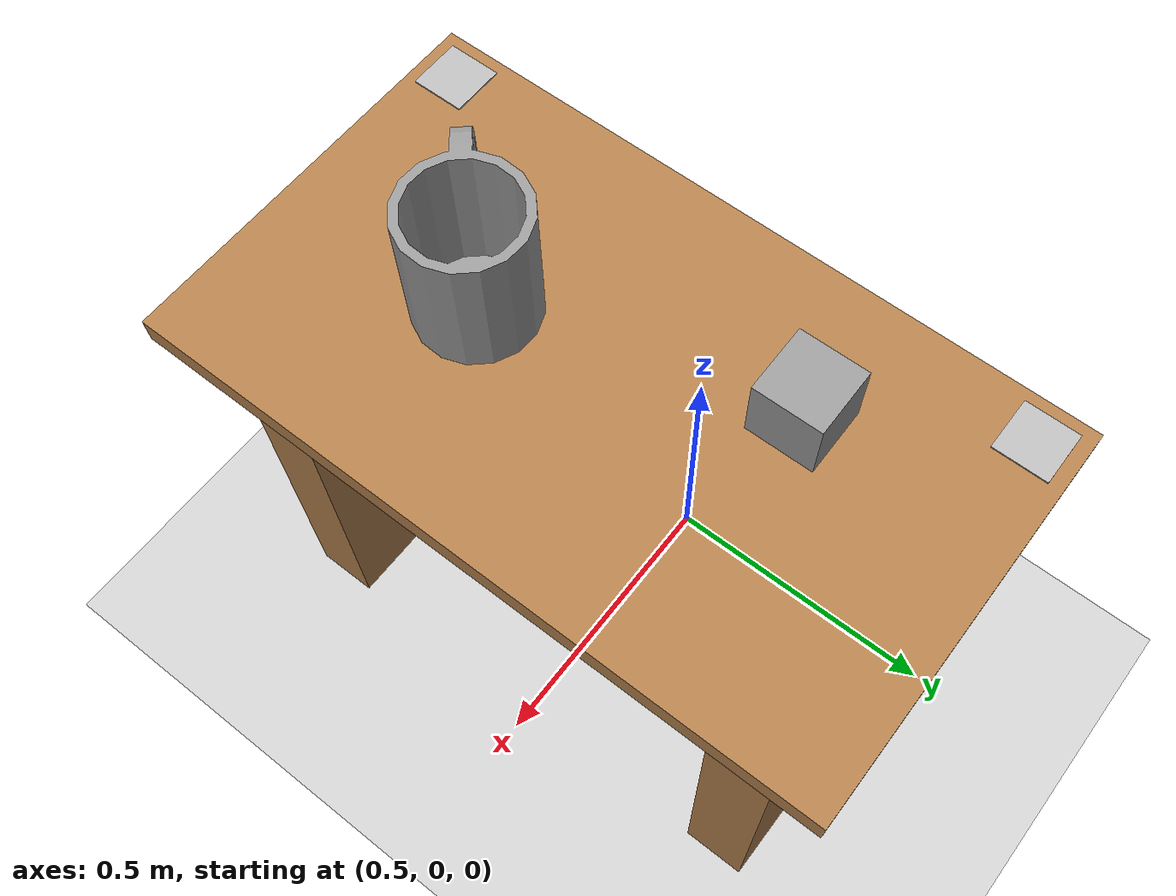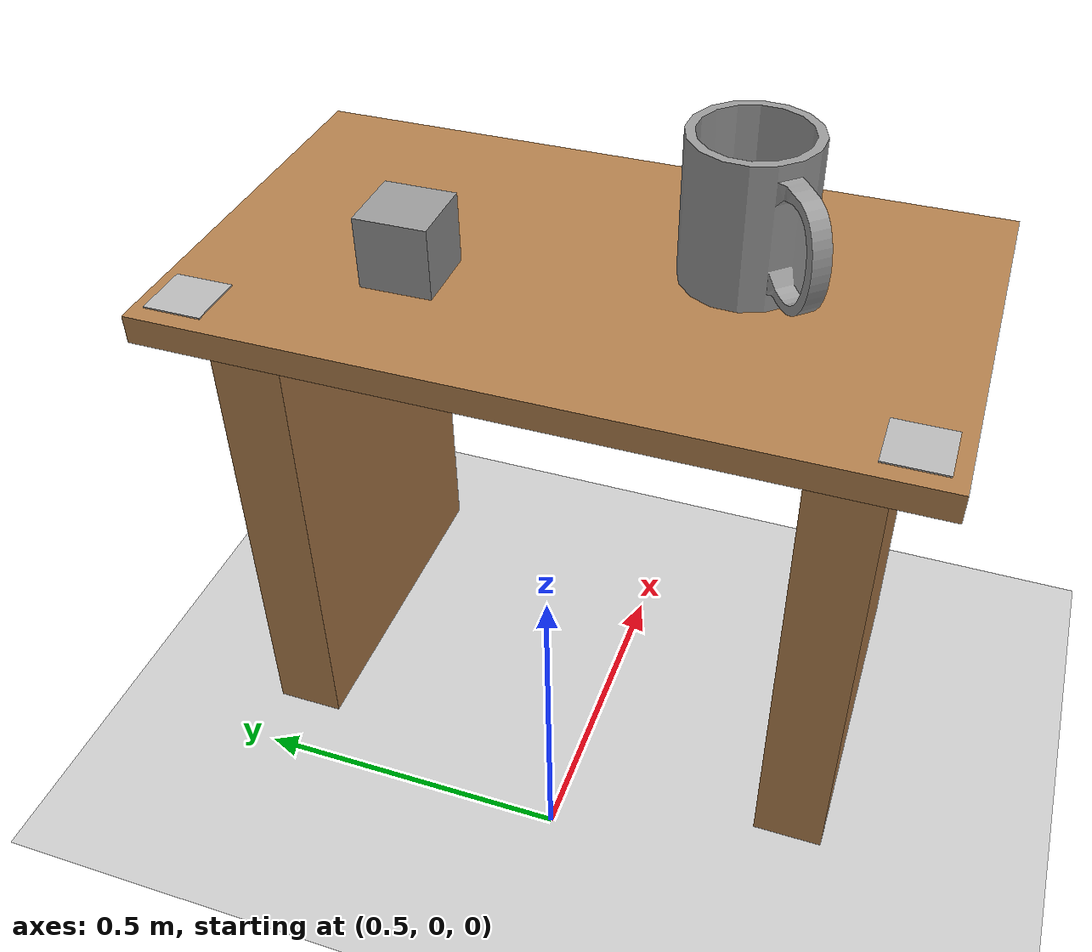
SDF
<sdf version="1.6">
 <world name="default">
  <light name="sun" type="directional">
   <pose>0 0 10 0 -0 0</pose>
   <diffuse>0.8 0.8 0.8 1</diffuse>
   <specular>0.2 0.2 0.2 1</specular>
   <attenuation>
    <range>1000</range>
    <constant>0.9</constant>
    <linear>0.01</linear>
    <quadratic>0.001</quadratic>
   </attenuation>
   <direction>-0.5 0.1 -0.9</direction>
  </light>
  <physics name="dart_2ms" default="0" type="dart">
   <max_step_size>0.002</max_step_size>
   <real_time_factor>1</real_time_factor>
   <real_time_update_rate>500</real_time_update_rate>
   <dart><solver><solver_type>pgs</solver_type></solver></dart>
  </physics>
  <model name="ground_plane">
   <static>1</static>
   <link name="link">
    <collision name="collision">
     <geometry><plane><normal>0 0 1</normal><size>100 100</size></plane></geometry>
     <surface>
      <contact><collide_bitmask>65535</collide_bitmask></contact>
      <friction><ode><mu>100</mu><mu2>50</mu2></ode></friction>
     </surface>
    </collision>
    <visual name="visual">
     <cast_shadows>0</cast_shadows>
     <geometry><plane><normal>0 0 1</normal><size>100 100</size></plane></geometry>
     <material>
      <script><uri>file://media/materials/scripts/gazebo.material</uri><name>Gazebo/Grey</name></script>
     </material>
    </visual>
   </link>
  </model>
  <gravity>0 0 -9.8</gravity>
  <magnetic_field>6e-06 2.3e-05 -4.2e-05</magnetic_field>
  <atmosphere type="adiabatic"/>
  <scene><ambient>0.4 0.4 0.4 1</ambient><background>0.7 0.7 0.7 1</background><shadows>1</shadows></scene>
  <audio><device>default</device></audio>
  <spherical_coordinates>
   <surface_model>EARTH_WGS84</surface_model>
   <latitude_deg>0</latitude_deg>
   <longitude_deg>0</longitude_deg>
   <elevation>0</elevation>
   <heading_deg>0</heading_deg>
  </spherical_coordinates>
  <model name="table_b_1">
   <static>1</static>
   <link name="link">
    <visual name="surface">
     <pose>0 0 0.73 0 -0 0</pose>
     <geometry><box><size>1.04 0.6 0.04</size></box></geometry>
     <material>
      <script><uri>file://media/materials/scripts/gazebo.material</uri><name>Gazebo/Wood</name></script>
     </material>
    </visual>
    <visual name="leg_left">
     <pose>0.39 0 0.355 0 -0 0</pose>
     <geometry><box><size>0.1 0.5 0.71</size></box></geometry>
     <material>
      <script><uri>file://media/materials/scripts/gazebo.material</uri><name>Gazebo/Wood</name></script>
     </material>
    </visual>
    <visual name="leg_right">
     <pose>-0.39 0 0.355 0 -0 0</pose>
     <geometry><box><size>0.1 0.5 0.71</size></box></geometry>
     <material>
      <script><uri>file://media/materials/scripts/gazebo.material</uri><name>Gazebo/Wood</name></script>
     </material>
    </visual>
    <collision name="surface">
     <pose>0 0 0.73 0 -0 0</pose>
     <geometry><box><size>1.04 0.6 0.04</size></box></geometry>
    </collision>
    <collision name="leg_left">
     <pose>0.39 0 0.355 0 -0 0</pose>
     <geometry><box><size>0.1 0.5 0.71</size></box></geometry>
    </collision>
    <collision name="leg_right">
     <pose>-0.39 0 0.355 0 -0 0</pose>
     <geometry><box><size>0.1 0.5 0.71</size></box></geometry>
    </collision>
    <visual name="marker_8">
     <pose>0.46 0.24 0.755 0 -0 0</pose>
     <geometry><mesh><uri>model://ar_marker_8cm_8/meshes/ar_marker_8cm.dae</uri></mesh></geometry>
    </visual>
    <visual name="marker_9">
     <pose>-0.46 0.24 0.755 0 -0 0</pose>
     <geometry><mesh><uri>model://ar_marker_8cm_9/meshes/ar_marker_8cm.dae</uri></mesh></geometry>
    </visual>
   </link>
   <pose>0.744485 0.018586 0.142925 0 -0 1.57098</pose>
  </model>
  <model name="Mug">
   <link name="link_0">
    <inertial>
     <mass>0.2</mass>
     <inertia>
      <ixx>0.0333333</ixx>
      <ixy>0</ixy>
      <ixz>0</ixz>
      <iyy>0.0333333</iyy>
      <iyz>0</iyz>
      <izz>0.0333333</izz>
     </inertia>
    </inertial>
    <visual name="visual">
     <geometry><mesh><uri>model://Mug/Mug.dae</uri><scale>1 1 1</scale></mesh></geometry>
     <material>
      <lighting>1</lighting>
      <script><uri>file://media/materials/scripts/gazebo.material</uri><name>Gazebo/Grey</name></script>
      <shader type="pixel"><normal_map>__default__</normal_map></shader>
      <ambient>0.3 0.3 0.3 1</ambient>
      <diffuse>0.7 0.7 0.7 1</diffuse>
      <specular>0.01 0.01 0.01 1</specular>
      <emissive>0 0 0 1</emissive>
     </material>
    </visual>
    <collision name="collision_2">
     <pose>-0.01 0.01 0.03 0 -0 0</pose>
     <geometry><sphere><radius>0.08</radius></sphere></geometry>
     <surface>
      <friction>
       <ode><mu>1</mu><mu2>1</mu2><fdir1>0 0 0</fdir1><slip1>0</slip1><slip2>0</slip2></ode>
       <torsional>
        <coefficient>1</coefficient>
        <patch_radius>0</patch_radius>
        <surface_radius>0</surface_radius>
        <use_patch_radius>1</use_patch_radius>
        <ode><slip>0</slip></ode>
       </torsional>
      </friction>
      <bounce><restitution_coefficient>0</restitution_coefficient><threshold>1e+06</threshold></bounce>
      <contact>
       <collide_without_contact>0</collide_without_contact>
       <collide_without_contact_bitmask>1</collide_without_contact_bitmask>
       <collide_bitmask>1</collide_bitmask>
       <ode>
        <soft_cfm>0</soft_cfm>
        <soft_erp>0.2</soft_erp>
        <kp>1e+13</kp>
        <kd>1</kd>
        <max_vel>0.01</max_vel>
        <min_depth>0</min_depth>
       </ode>
       <bullet>
        <split_impulse>1</split_impulse>
        <split_impulse_penetration_threshold>-0.01</split_impulse_penetration_threshold>
        <soft_cfm>0</soft_cfm>
        <soft_erp>0.2</soft_erp>
        <kp>1e+13</kp>
        <kd>1</kd>
       </bullet>
      </contact>
     </surface>
    </collision>
    <collision name="collision_4">
     <pose>0.01 0.01 -0.1 0 -0 0</pose>
     <geometry><box><size>0.12 0.12 0.01</size></box></geometry>
     <surface>
      <friction>
       <ode><mu>1</mu><mu2>1</mu2><fdir1>0 0 0</fdir1><slip1>0</slip1><slip2>0</slip2></ode>
       <torsional>
        <coefficient>1</coefficient>
        <patch_radius>0</patch_radius>
        <surface_radius>0</surface_radius>
        <use_patch_radius>1</use_patch_radius>
        <ode><slip>0</slip></ode>
       </torsional>
      </friction>
      <bounce><restitution_coefficient>0</restitution_coefficient><threshold>1e+06</threshold></bounce>
      <contact>
       <collide_without_contact>0</collide_without_contact>
       <collide_without_contact_bitmask>1</collide_without_contact_bitmask>
       <collide_bitmask>1</collide_bitmask>
       <ode>
        <soft_cfm>0</soft_cfm>
        <soft_erp>0.2</soft_erp>
        <kp>1e+13</kp>
        <kd>1</kd>
        <max_vel>0.01</max_vel>
        <min_depth>0</min_depth>
       </ode>
       <bullet>
        <split_impulse>1</split_impulse>
        <split_impulse_penetration_threshold>-0.01</split_impulse_penetration_threshold>
        <soft_cfm>0</soft_cfm>
        <soft_erp>0.2</soft_erp>
        <kp>1e+13</kp>
        <kd>1</kd>
       </bullet>
      </contact>
     </surface>
    </collision>
    <collision name="collision_6">
     <pose>0.12 0 0.08 0 -0 0</pose>
     <geometry><box><size>0.11 0.01 0.01</size></box></geometry>
     <surface>
      <friction>
       <ode><mu>1</mu><mu2>1</mu2><fdir1>0 0 0</fdir1><slip1>0</slip1><slip2>0</slip2></ode>
       <torsional>
        <coefficient>1</coefficient>
        <patch_radius>0</patch_radius>
        <surface_radius>0</surface_radius>
        <use_patch_radius>1</use_patch_radius>
        <ode><slip>0</slip></ode>
       </torsional>
      </friction>
      <bounce><restitution_coefficient>0</restitution_coefficient><threshold>1e+06</threshold></bounce>
      <contact>
       <collide_without_contact>0</collide_without_contact>
       <collide_without_contact_bitmask>1</collide_without_contact_bitmask>
       <collide_bitmask>1</collide_bitmask>
       <ode>
        <soft_cfm>0</soft_cfm>
        <soft_erp>0.2</soft_erp>
        <kp>1e+13</kp>
        <kd>1</kd>
        <max_vel>0.01</max_vel>
        <min_depth>0</min_depth>
       </ode>
       <bullet>
        <split_impulse>1</split_impulse>
        <split_impulse_penetration_threshold>-0.01</split_impulse_penetration_threshold>
        <soft_cfm>0</soft_cfm>
        <soft_erp>0.2</soft_erp>
        <kp>1e+13</kp>
        <kd>1</kd>
       </bullet>
      </contact>
     </surface>
    </collision>
    <collision name="collision_3">
     <pose>-0.01 0.01 -0.02 0 -0 0</pose>
     <geometry><sphere><radius>0.08</radius></sphere></geometry>
     <surface>
      <friction>
       <ode><mu>1</mu><mu2>1</mu2><fdir1>0 0 0</fdir1><slip1>0</slip1><slip2>0</slip2></ode>
       <torsional>
        <coefficient>1</coefficient>
        <patch_radius>0</patch_radius>
        <surface_radius>0</surface_radius>
        <use_patch_radius>1</use_patch_radius>
        <ode><slip>0</slip></ode>
       </torsional>
      </friction>
      <bounce><restitution_coefficient>0</restitution_coefficient><threshold>1e+06</threshold></bounce>
      <contact>
       <collide_without_contact>0</collide_without_contact>
       <collide_without_contact_bitmask>1</collide_without_contact_bitmask>
       <collide_bitmask>1</collide_bitmask>
       <ode>
        <soft_cfm>0</soft_cfm>
        <soft_erp>0.2</soft_erp>
        <kp>1e+13</kp>
        <kd>1</kd>
        <max_vel>0.01</max_vel>
        <min_depth>0</min_depth>
       </ode>
       <bullet>
        <split_impulse>1</split_impulse>
        <split_impulse_penetration_threshold>-0.01</split_impulse_penetration_threshold>
        <soft_cfm>0</soft_cfm>
        <soft_erp>0.2</soft_erp>
        <kp>1e+13</kp>
        <kd>1</kd>
       </bullet>
      </contact>
     </surface>
    </collision>
    <collision name="collision_1">
     <pose>-0.01 0.01 0 0 -0 0</pose>
     <geometry><sphere><radius>0.08</radius></sphere></geometry>
     <surface>
      <friction>
       <ode><mu>1</mu><mu2>1</mu2><fdir1>0 0 0</fdir1><slip1>0</slip1><slip2>0</slip2></ode>
       <torsional>
        <coefficient>1</coefficient>
        <patch_radius>0</patch_radius>
        <surface_radius>0</surface_radius>
        <use_patch_radius>1</use_patch_radius>
        <ode><slip>0</slip></ode>
       </torsional>
      </friction>
      <bounce><restitution_coefficient>0</restitution_coefficient><threshold>1e+06</threshold></bounce>
      <contact>
       <collide_without_contact>0</collide_without_contact>
       <collide_without_contact_bitmask>1</collide_without_contact_bitmask>
       <collide_bitmask>1</collide_bitmask>
       <ode>
        <soft_cfm>0</soft_cfm>
        <soft_erp>0.2</soft_erp>
        <kp>1e+13</kp>
        <kd>1</kd>
        <max_vel>0.01</max_vel>
        <min_depth>0</min_depth>
       </ode>
       <bullet>
        <split_impulse>1</split_impulse>
        <split_impulse_penetration_threshold>-0.01</split_impulse_penetration_threshold>
        <soft_cfm>0</soft_cfm>
        <soft_erp>0.2</soft_erp>
        <kp>1e+13</kp>
        <kd>1</kd>
       </bullet>
      </contact>
     </surface>
    </collision>
    <collision name="collision_5">
     <pose>0.17 0 0 0 -0 0</pose>
     <geometry><box><size>0.01 0.01 0.18</size></box></geometry>
     <surface>
      <friction>
       <ode><mu>1</mu><mu2>1</mu2><fdir1>0 0 0</fdir1><slip1>0</slip1><slip2>0</slip2></ode>
       <torsional>
        <coefficient>1</coefficient>
        <patch_radius>0</patch_radius>
        <surface_radius>0</surface_radius>
        <use_patch_radius>1</use_patch_radius>
        <ode><slip>0</slip></ode>
       </torsional>
      </friction>
      <bounce><restitution_coefficient>0</restitution_coefficient><threshold>1e+06</threshold></bounce>
      <contact>
       <collide_without_contact>0</collide_without_contact>
       <collide_without_contact_bitmask>1</collide_without_contact_bitmask>
       <collide_bitmask>1</collide_bitmask>
       <ode>
        <soft_cfm>0</soft_cfm>
        <soft_erp>0.2</soft_erp>
        <kp>1e+13</kp>
        <kd>1</kd>
        <max_vel>0.01</max_vel>
        <min_depth>0</min_depth>
       </ode>
       <bullet>
        <split_impulse>1</split_impulse>
        <split_impulse_penetration_threshold>-0.01</split_impulse_penetration_threshold>
        <soft_cfm>0</soft_cfm>
        <soft_erp>0.2</soft_erp>
        <kp>1e+13</kp>
        <kd>1</kd>
       </bullet>
      </contact>
     </surface>
    </collision>
    <collision name="collision_7">
     <pose>0.12 0 -0.08 0 -0 0</pose>
     <geometry><box><size>0.09 0.01 0.01</size></box></geometry>
     <surface>
      <friction>
       <ode><mu>1</mu><mu2>1</mu2><fdir1>0 0 0</fdir1><slip1>0</slip1><slip2>0</slip2></ode>
       <torsional>
        <coefficient>1</coefficient>
        <patch_radius>0</patch_radius>
        <surface_radius>0</surface_radius>
        <use_patch_radius>1</use_patch_radius>
        <ode><slip>0</slip></ode>
       </torsional>
      </friction>
      <bounce><restitution_coefficient>0</restitution_coefficient><threshold>1e+06</threshold></bounce>
      <contact>
       <collide_without_contact>0</collide_without_contact>
       <collide_without_contact_bitmask>1</collide_without_contact_bitmask>
       <collide_bitmask>1</collide_bitmask>
       <ode>
        <soft_cfm>0</soft_cfm>
        <soft_erp>0.2</soft_erp>
        <kp>1e+13</kp>
        <kd>1</kd>
        <max_vel>0.01</max_vel>
        <min_depth>0</min_depth>
       </ode>
       <bullet>
        <split_impulse>1</split_impulse>
        <split_impulse_penetration_threshold>-0.01</split_impulse_penetration_threshold>
        <soft_cfm>0</soft_cfm>
        <soft_erp>0.2</soft_erp>
        <kp>1e+13</kp>
        <kd>1</kd>
       </bullet>
      </contact>
     </surface>
    </collision>
   </link>
   <static>0</static>
   <pose>0.764797 -0.182399 0.997924 1e-06 -7e-06 -2.39901</pose>
  </model>
  <model name="BoxSquare">
   <link name="link_0">
    <inertial>
     <mass>0.25</mass>
     <inertia>
      <ixx>0.00041667</ixx>
      <ixy>0</ixy>
      <ixz>0</ixz>
      <iyy>0.00041667</iyy>
      <iyz>0</iyz>
      <izz>0.00041667</izz>
     </inertia>
    </inertial>
    <visual name="visual">
     <geometry><mesh><uri>model://BoxSquare/BoxSquare.dae</uri><scale>1 1 1</scale></mesh></geometry>
     <material>
      <lighting>1</lighting>
      <script><uri>file://media/materials/scripts/gazebo.material</uri><name>Gazebo/Grey</name></script>
      <shader type="pixel"><normal_map>__default__</normal_map></shader>
      <ambient>0.3 0.3 0.3 1</ambient>
      <diffuse>0.7 0.7 0.7 1</diffuse>
      <specular>0.01 0.01 0.01 1</specular>
      <emissive>0 0 0 1</emissive>
     </material>
    </visual>
    <collision name="collision_1">
     <geometry><box><size>0.1 0.1 0.1</size></box></geometry>
     <surface>
      <friction>
       <ode><mu>1</mu><mu2>1</mu2><fdir1>0 0 0</fdir1><slip1>0</slip1><slip2>0</slip2></ode>
       <torsional>
        <coefficient>1</coefficient>
        <patch_radius>0</patch_radius>
        <surface_radius>0</surface_radius>
        <use_patch_radius>1</use_patch_radius>
        <ode><slip>0</slip></ode>
       </torsional>
      </friction>
      <bounce><restitution_coefficient>0</restitution_coefficient><threshold>1e+06</threshold></bounce>
      <contact>
       <collide_without_contact>0</collide_without_contact>
       <collide_without_contact_bitmask>1</collide_without_contact_bitmask>
       <collide_bitmask>1</collide_bitmask>
       <ode>
        <soft_cfm>0</soft_cfm>
        <soft_erp>0.2</soft_erp>
        <kp>1e+13</kp>
        <kd>1</kd>
        <max_vel>0.01</max_vel>
        <min_depth>0</min_depth>
       </ode>
       <bullet>
        <split_impulse>1</split_impulse>
        <split_impulse_penetration_threshold>-0.01</split_impulse_penetration_threshold>
        <soft_cfm>0</soft_cfm>
        <soft_erp>0.2</soft_erp>
        <kp>1e+13</kp>
        <kd>1</kd>
       </bullet>
      </contact>
     </surface>
    </collision>
   </link>
   <static>0</static>
   <pose>0.651848 0.236942 0.942925 2e-06 -1e-06 0.008782</pose>
  </model>
 </world>
</sdf>
